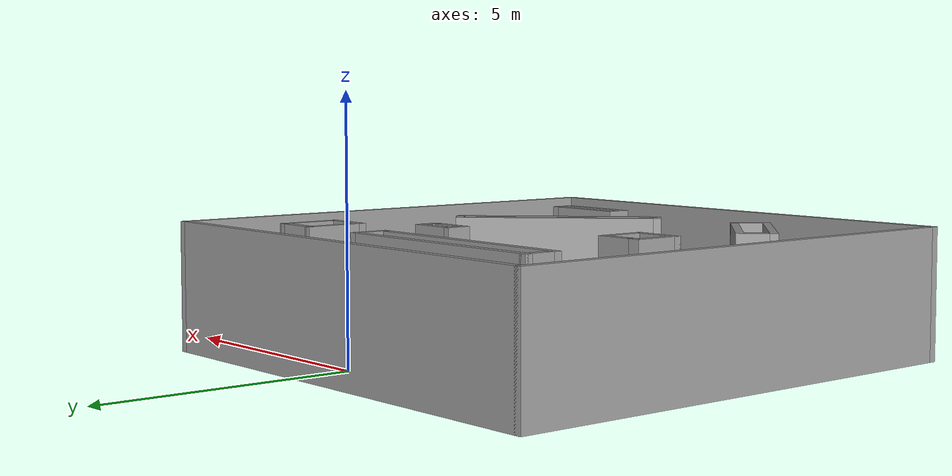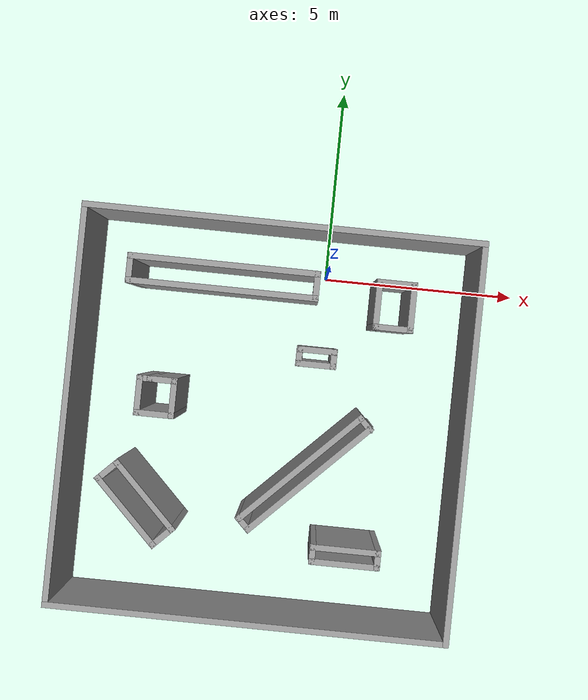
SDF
<?xml version='1.0'?>
<sdf version='1.7'>
  <model name='room'>
    <pose>-1.14868 -3.81575 0 0 -0 0</pose>
    <link name='Wall_0'>
      <collision name='Wall_0_Collision'>
        <geometry>
          <box>
            <size>10 0.15 2.5</size>
          </box>
        </geometry>
        <pose>0 0 1.25 0 -0 0</pose>
      </collision>
      <visual name='Wall_0_Visual'>
        <pose>0 0 1.25 0 -0 0</pose>
        <geometry>
          <box>
            <size>10 0.15 2.5</size>
          </box>
        </geometry>
        <material>
          <script>
            <uri>file://media/materials/scripts/gazebo.material</uri>
            <name>Gazebo/Grey</name>
          </script>
          <ambient>1 1 1 1</ambient>
        </material>
        <meta>
          <layer>0</layer>
        </meta>
      </visual>
      <pose>0 4.925 0 0 -0 0</pose>
    </link>
    <link name='Wall_1'>
      <collision name='Wall_1_Collision'>
        <geometry>
          <box>
            <size>10 0.15 2.5</size>
          </box>
        </geometry>
        <pose>0 0 1.25 0 -0 0</pose>
      </collision>
      <visual name='Wall_1_Visual'>
        <pose>0 0 1.25 0 -0 0</pose>
        <geometry>
          <box>
            <size>10 0.15 2.5</size>
          </box>
        </geometry>
        <material>
          <script>
            <uri>file://media/materials/scripts/gazebo.material</uri>
            <name>Gazebo/Grey</name>
          </script>
          <ambient>1 1 1 1</ambient>
        </material>
        <meta>
          <layer>0</layer>
        </meta>
      </visual>
      <pose>4.925 -0 0 0 -0 -1.5708</pose>
    </link>
    <link name='Wall_10'>
      <collision name='Wall_10_Collision'>
        <geometry>
          <box>
            <size>4 0.15 2.5</size>
          </box>
        </geometry>
        <pose>0 0 1.25 0 -0 0</pose>
      </collision>
      <visual name='Wall_10_Visual'>
        <pose>0 0 1.25 0 -0 0</pose>
        <geometry>
          <box>
            <size>4 0.15 2.5</size>
          </box>
        </geometry>
        <material>
          <script>
            <uri>file://media/materials/scripts/gazebo.material</uri>
            <name>Gazebo/Grey</name>
          </script>
          <ambient>1 1 1 1</ambient>
        </material>
        <meta>
          <layer>0</layer>
        </meta>
      </visual>
      <pose>0.947729 -0.990701 0 0 -0 -2.35619</pose>
    </link>
    <link name='Wall_11'>
      <collision name='Wall_11_Collision'>
        <geometry>
          <box>
            <size>0.5 0.15 2.5</size>
          </box>
        </geometry>
        <pose>0 0 1.25 0 -0 0</pose>
      </collision>
      <visual name='Wall_11_Visual'>
        <pose>0 0 1.25 0 -0 0</pose>
        <geometry>
          <box>
            <size>0.5 0.15 2.5</size>
          </box>
        </geometry>
        <material>
          <script>
            <uri>file://media/materials/scripts/gazebo.material</uri>
            <name>Gazebo/Grey</name>
          </script>
          <ambient>1 1 1 1</ambient>
        </material>
        <meta>
          <layer>0</layer>
        </meta>
      </visual>
      <pose>-0.289708 -2.47562 0 0 -0 -0.785398</pose>
    </link>
    <link name='Wall_12'>
      <collision name='Wall_12_Collision'>
        <geometry>
          <box>
            <size>4 0.15 2.5</size>
          </box>
        </geometry>
        <pose>0 0 1.25 0 -0 0</pose>
      </collision>
      <visual name='Wall_12_Visual'>
        <pose>0 0 1.25 0 -0 0</pose>
        <geometry>
          <box>
            <size>4 0.15 2.5</size>
          </box>
        </geometry>
        <material>
          <script>
            <uri>file://media/materials/scripts/gazebo.material</uri>
            <name>Gazebo/Grey</name>
          </script>
          <ambient>1 1 1 1</ambient>
        </material>
        <meta>
          <layer>0</layer>
        </meta>
      </visual>
      <pose>1.19522 -1.23819 0 0 -0 0.785398</pose>
    </link>
    <link name='Wall_13'>
      <collision name='Wall_13_Collision'>
        <geometry>
          <box>
            <size>0.15 0.15 2.5</size>
          </box>
        </geometry>
        <pose>0 0 1.25 0 -0 0</pose>
      </collision>
      <visual name='Wall_13_Visual'>
        <pose>0 0 1.25 0 -0 0</pose>
        <geometry>
          <box>
            <size>0.15 0.15 2.5</size>
          </box>
        </geometry>
        <material>
          <script>
            <uri>file://media/materials/scripts/gazebo.material</uri>
            <name>Gazebo/Grey</name>
          </script>
          <ambient>1 1 1 1</ambient>
        </material>
        <meta>
          <layer>0</layer>
        </meta>
      </visual>
      <pose>2.5564 0.122992 0 0 -0 0</pose>
    </link>
    <link name='Wall_14'>
      <collision name='Wall_14_Collision'>
        <geometry>
          <box>
            <size>0.5 0.15 2.5</size>
          </box>
        </geometry>
        <pose>0 0 1.25 0 -0 0</pose>
      </collision>
      <visual name='Wall_14_Visual'>
        <pose>0 0 1.25 0 -0 0</pose>
        <geometry>
          <box>
            <size>0.5 0.15 2.5</size>
          </box>
        </geometry>
        <material>
          <script>
            <uri>file://media/materials/scripts/gazebo.material</uri>
            <name>Gazebo/Grey</name>
          </script>
          <ambient>1 1 1 1</ambient>
        </material>
        <meta>
          <layer>0</layer>
        </meta>
      </visual>
      <pose>2.43265 0.246736 0 0 -0 2.35619</pose>
    </link>
    <link name='Wall_16'>
      <collision name='Wall_16_Collision'>
        <geometry>
          <box>
            <size>0.75 0.15 2.5</size>
          </box>
        </geometry>
        <pose>0 0 1.25 0 -0 0</pose>
      </collision>
      <visual name='Wall_16_Visual'>
        <pose>0 0 1.25 0 -0 0</pose>
        <geometry>
          <box>
            <size>0.75 0.15 2.5</size>
          </box>
        </geometry>
        <material>
          <script>
            <uri>file://media/materials/scripts/gazebo.material</uri>
            <name>Gazebo/Grey</name>
          </script>
          <ambient>1 1 1 1</ambient>
        </material>
        <meta>
          <layer>0</layer>
        </meta>
      </visual>
      <pose>-2.61514 0.827804 0 0 -0 0</pose>
    </link>
    <link name='Wall_17'>
      <collision name='Wall_17_Collision'>
        <geometry>
          <box>
            <size>1 0.15 2.5</size>
          </box>
        </geometry>
        <pose>0 0 1.25 0 -0 0</pose>
      </collision>
      <visual name='Wall_17_Visual'>
        <pose>0 0 1.25 0 -0 0</pose>
        <geometry>
          <box>
            <size>1 0.15 2.5</size>
          </box>
        </geometry>
        <material>
          <script>
            <uri>file://media/materials/scripts/gazebo.material</uri>
            <name>Gazebo/Grey</name>
          </script>
          <ambient>1 1 1 1</ambient>
        </material>
        <meta>
          <layer>0</layer>
        </meta>
      </visual>
      <pose>-2.31514 0.402803 0 0 -0 -1.5708</pose>
    </link>
    <link name='Wall_18'>
      <collision name='Wall_18_Collision'>
        <geometry>
          <box>
            <size>1 0.15 2.5</size>
          </box>
        </geometry>
        <pose>0 0 1.25 0 -0 0</pose>
      </collision>
      <visual name='Wall_18_Visual'>
        <pose>0 0 1.25 0 -0 0</pose>
        <geometry>
          <box>
            <size>1 0.15 2.5</size>
          </box>
        </geometry>
        <material>
          <script>
            <uri>file://media/materials/scripts/gazebo.material</uri>
            <name>Gazebo/Grey</name>
          </script>
          <ambient>1 1 1 1</ambient>
        </material>
        <meta>
          <layer>0</layer>
        </meta>
      </visual>
      <pose>-2.74014 -0.022197 0 0 -0 3.14159</pose>
    </link>
    <link name='Wall_19'>
      <collision name='Wall_19_Collision'>
        <geometry>
          <box>
            <size>1 0.15 2.5</size>
          </box>
        </geometry>
        <pose>0 0 1.25 0 -0 0</pose>
      </collision>
      <visual name='Wall_19_Visual'>
        <pose>0 0 1.25 0 -0 0</pose>
        <geometry>
          <box>
            <size>1 0.15 2.5</size>
          </box>
        </geometry>
        <material>
          <script>
            <uri>file://media/materials/scripts/gazebo.material</uri>
            <name>Gazebo/Grey</name>
          </script>
          <ambient>1 1 1 1</ambient>
        </material>
        <meta>
          <layer>0</layer>
        </meta>
      </visual>
      <pose>-3.16514 0.402803 0 0 -0 1.5708</pose>
    </link>
    <link name='Wall_2'>
      <collision name='Wall_2_Collision'>
        <geometry>
          <box>
            <size>10 0.15 2.5</size>
          </box>
        </geometry>
        <pose>0 0 1.25 0 -0 0</pose>
      </collision>
      <visual name='Wall_2_Visual'>
        <pose>0 0 1.25 0 -0 0</pose>
        <geometry>
          <box>
            <size>10 0.15 2.5</size>
          </box>
        </geometry>
        <material>
          <script>
            <uri>file://media/materials/scripts/gazebo.material</uri>
            <name>Gazebo/Grey</name>
          </script>
          <ambient>1 1 1 1</ambient>
        </material>
        <meta>
          <layer>0</layer>
        </meta>
      </visual>
      <pose>0 -4.925 0 0 -0 3.14159</pose>
    </link>
    <link name='Wall_20'>
      <collision name='Wall_20_Collision'>
        <geometry>
          <box>
            <size>0.4 0.15 2.5</size>
          </box>
        </geometry>
        <pose>0 0 1.25 0 -0 0</pose>
      </collision>
      <visual name='Wall_20_Visual'>
        <pose>0 0 1.25 0 -0 0</pose>
        <geometry>
          <box>
            <size>0.4 0.15 2.5</size>
          </box>
        </geometry>
        <material>
          <script>
            <uri>file://media/materials/scripts/gazebo.material</uri>
            <name>Gazebo/Grey</name>
          </script>
          <ambient>1 1 1 1</ambient>
        </material>
        <meta>
          <layer>0</layer>
        </meta>
      </visual>
      <pose>-3.04014 0.827804 0 0 -0 0</pose>
    </link>
    <link name='Wall_22'>
      <collision name='Wall_22_Collision'>
        <geometry>
          <box>
            <size>1 0.15 2.5</size>
          </box>
        </geometry>
        <pose>0 0 1.25 0 -0 0</pose>
      </collision>
      <visual name='Wall_22_Visual'>
        <pose>0 0 1.25 0 -0 0</pose>
        <geometry>
          <box>
            <size>1 0.15 2.5</size>
          </box>
        </geometry>
        <material>
          <script>
            <uri>file://media/materials/scripts/gazebo.material</uri>
            <name>Gazebo/Grey</name>
          </script>
          <ambient>1 1 1 1</ambient>
        </material>
        <meta>
          <layer>0</layer>
        </meta>
      </visual>
      <pose>1.08051 1.91834 0 0 -0 0</pose>
    </link>
    <link name='Wall_23'>
      <collision name='Wall_23_Collision'>
        <geometry>
          <box>
            <size>0.5 0.15 2.5</size>
          </box>
        </geometry>
        <pose>0 0 1.25 0 -0 0</pose>
      </collision>
      <visual name='Wall_23_Visual'>
        <pose>0 0 1.25 0 -0 0</pose>
        <geometry>
          <box>
            <size>0.5 0.15 2.5</size>
          </box>
        </geometry>
        <material>
          <script>
            <uri>file://media/materials/scripts/gazebo.material</uri>
            <name>Gazebo/Grey</name>
          </script>
          <ambient>1 1 1 1</ambient>
        </material>
        <meta>
          <layer>0</layer>
        </meta>
      </visual>
      <pose>1.50551 1.74334 0 0 -0 -1.5708</pose>
    </link>
    <link name='Wall_24'>
      <collision name='Wall_24_Collision'>
        <geometry>
          <box>
            <size>1 0.15 2.5</size>
          </box>
        </geometry>
        <pose>0 0 1.25 0 -0 0</pose>
      </collision>
      <visual name='Wall_24_Visual'>
        <pose>0 0 1.25 0 -0 0</pose>
        <geometry>
          <box>
            <size>1 0.15 2.5</size>
          </box>
        </geometry>
        <material>
          <script>
            <uri>file://media/materials/scripts/gazebo.material</uri>
            <name>Gazebo/Grey</name>
          </script>
          <ambient>1 1 1 1</ambient>
        </material>
        <meta>
          <layer>0</layer>
        </meta>
      </visual>
      <pose>1.08051 1.56835 0 0 -0 3.14159</pose>
    </link>
    <link name='Wall_25'>
      <collision name='Wall_25_Collision'>
        <geometry>
          <box>
            <size>0.5 0.15 2.5</size>
          </box>
        </geometry>
        <pose>0 0 1.25 0 -0 0</pose>
      </collision>
      <visual name='Wall_25_Visual'>
        <pose>0 0 1.25 0 -0 0</pose>
        <geometry>
          <box>
            <size>0.5 0.15 2.5</size>
          </box>
        </geometry>
        <material>
          <script>
            <uri>file://media/materials/scripts/gazebo.material</uri>
            <name>Gazebo/Grey</name>
          </script>
          <ambient>1 1 1 1</ambient>
        </material>
        <meta>
          <layer>0</layer>
        </meta>
      </visual>
      <pose>0.655507 1.74334 0 0 -0 1.5708</pose>
    </link>
    <link name='Wall_27'>
      <collision name='Wall_27_Collision'>
        <geometry>
          <box>
            <size>2.25 0.15 2.5</size>
          </box>
        </geometry>
        <pose>0 0 1.25 0 -0 0</pose>
      </collision>
      <visual name='Wall_27_Visual'>
        <pose>0 0 1.25 0 -0 0</pose>
        <geometry>
          <box>
            <size>2.25 0.15 2.5</size>
          </box>
        </geometry>
        <material>
          <script>
            <uri>file://media/materials/scripts/gazebo.material</uri>
            <name>Gazebo/Grey</name>
          </script>
          <ambient>1 1 1 1</ambient>
        </material>
        <meta>
          <layer>0</layer>
        </meta>
      </visual>
      <pose>-2.77071 -2.03956 0 0 -0 -0.785398</pose>
    </link>
    <link name='Wall_28'>
      <collision name='Wall_28_Collision'>
        <geometry>
          <box>
            <size>0.75 0.15 2.5</size>
          </box>
        </geometry>
        <pose>0 0 1.25 0 -0 0</pose>
      </collision>
      <visual name='Wall_28_Visual'>
        <pose>0 0 1.25 0 -0 0</pose>
        <geometry>
          <box>
            <size>0.75 0.15 2.5</size>
          </box>
        </geometry>
        <material>
          <script>
            <uri>file://media/materials/scripts/gazebo.material</uri>
            <name>Gazebo/Grey</name>
          </script>
          <ambient>1 1 1 1</ambient>
        </material>
        <meta>
          <layer>0</layer>
        </meta>
      </visual>
      <pose>-2.24038 -2.99415 0 0 -0 -2.35619</pose>
    </link>
    <link name='Wall_29'>
      <collision name='Wall_29_Collision'>
        <geometry>
          <box>
            <size>2.25 0.15 2.5</size>
          </box>
        </geometry>
        <pose>0 0 1.25 0 -0 0</pose>
      </collision>
      <visual name='Wall_29_Visual'>
        <pose>0 0 1.25 0 -0 0</pose>
        <geometry>
          <box>
            <size>2.25 0.15 2.5</size>
          </box>
        </geometry>
        <material>
          <script>
            <uri>file://media/materials/scripts/gazebo.material</uri>
            <name>Gazebo/Grey</name>
          </script>
          <ambient>1 1 1 1</ambient>
        </material>
        <meta>
          <layer>0</layer>
        </meta>
      </visual>
      <pose>-3.19498 -2.46382 0 0 -0 2.35619</pose>
    </link>
    <link name='Wall_3'>
      <collision name='Wall_3_Collision'>
        <geometry>
          <box>
            <size>10 0.15 2.5</size>
          </box>
        </geometry>
        <pose>0 0 1.25 0 -0 0</pose>
      </collision>
      <visual name='Wall_3_Visual'>
        <pose>0 0 1.25 0 -0 0</pose>
        <geometry>
          <box>
            <size>10 0.15 2.5</size>
          </box>
        </geometry>
        <material>
          <script>
            <uri>file://media/materials/scripts/gazebo.material</uri>
            <name>Gazebo/Grey</name>
          </script>
          <ambient>1 1 1 1</ambient>
        </material>
        <meta>
          <layer>0</layer>
        </meta>
      </visual>
      <pose>-4.925 -0 0 0 -0 1.5708</pose>
    </link>
    <link name='Wall_30'>
      <collision name='Wall_30_Collision'>
        <geometry>
          <box>
            <size>0.75 0.15 2.5</size>
          </box>
        </geometry>
        <pose>0 0 1.25 0 -0 0</pose>
      </collision>
      <visual name='Wall_30_Visual'>
        <pose>0 0 1.25 0 -0 0</pose>
        <geometry>
          <box>
            <size>0.75 0.15 2.5</size>
          </box>
        </geometry>
        <material>
          <script>
            <uri>file://media/materials/scripts/gazebo.material</uri>
            <name>Gazebo/Grey</name>
          </script>
          <ambient>1 1 1 1</ambient>
        </material>
        <meta>
          <layer>0</layer>
        </meta>
      </visual>
      <pose>-3.72531 -1.50923 0 0 -0 0.785398</pose>
    </link>
    <link name='Wall_32'>
      <collision name='Wall_32_Collision'>
        <geometry>
          <box>
            <size>1.75 0.15 2.5</size>
          </box>
        </geometry>
        <pose>0 0 1.25 0 -0 0</pose>
      </collision>
      <visual name='Wall_32_Visual'>
        <pose>0 0 1.25 0 -0 0</pose>
        <geometry>
          <box>
            <size>1.75 0.15 2.5</size>
          </box>
        </geometry>
        <material>
          <script>
            <uri>file://media/materials/scripts/gazebo.material</uri>
            <name>Gazebo/Grey</name>
          </script>
          <ambient>1 1 1 1</ambient>
        </material>
        <meta>
          <layer>0</layer>
        </meta>
      </visual>
      <pose>2.25785 -2.87279 0 0 -0 0</pose>
    </link>
    <link name='Wall_33'>
      <collision name='Wall_33_Collision'>
        <geometry>
          <box>
            <size>0.5 0.15 2.5</size>
          </box>
        </geometry>
        <pose>0 0 1.25 0 -0 0</pose>
      </collision>
      <visual name='Wall_33_Visual'>
        <pose>0 0 1.25 0 -0 0</pose>
        <geometry>
          <box>
            <size>0.5 0.15 2.5</size>
          </box>
        </geometry>
        <material>
          <script>
            <uri>file://media/materials/scripts/gazebo.material</uri>
            <name>Gazebo/Grey</name>
          </script>
          <ambient>1 1 1 1</ambient>
        </material>
        <meta>
          <layer>0</layer>
        </meta>
      </visual>
      <pose>3.05785 -3.04779 0 0 -0 -1.5708</pose>
    </link>
    <link name='Wall_34'>
      <collision name='Wall_34_Collision'>
        <geometry>
          <box>
            <size>1.75 0.15 2.5</size>
          </box>
        </geometry>
        <pose>0 0 1.25 0 -0 0</pose>
      </collision>
      <visual name='Wall_34_Visual'>
        <pose>0 0 1.25 0 -0 0</pose>
        <geometry>
          <box>
            <size>1.75 0.15 2.5</size>
          </box>
        </geometry>
        <material>
          <script>
            <uri>file://media/materials/scripts/gazebo.material</uri>
            <name>Gazebo/Grey</name>
          </script>
          <ambient>1 1 1 1</ambient>
        </material>
        <meta>
          <layer>0</layer>
        </meta>
      </visual>
      <pose>2.25785 -3.22279 0 0 -0 3.14159</pose>
    </link>
    <link name='Wall_35'>
      <collision name='Wall_35_Collision'>
        <geometry>
          <box>
            <size>0.5 0.15 2.5</size>
          </box>
        </geometry>
        <pose>0 0 1.25 0 -0 0</pose>
      </collision>
      <visual name='Wall_35_Visual'>
        <pose>0 0 1.25 0 -0 0</pose>
        <geometry>
          <box>
            <size>0.5 0.15 2.5</size>
          </box>
        </geometry>
        <material>
          <script>
            <uri>file://media/materials/scripts/gazebo.material</uri>
            <name>Gazebo/Grey</name>
          </script>
          <ambient>1 1 1 1</ambient>
        </material>
        <meta>
          <layer>0</layer>
        </meta>
      </visual>
      <pose>1.45785 -3.04779 0 0 -0 1.5708</pose>
    </link>
    <link name='Wall_37'>
      <collision name='Wall_37_Collision'>
        <geometry>
          <box>
            <size>1 0.15 2.5</size>
          </box>
        </geometry>
        <pose>0 0 1.25 0 -0 0</pose>
      </collision>
      <visual name='Wall_37_Visual'>
        <pose>0 0 1.25 0 -0 0</pose>
        <geometry>
          <box>
            <size>1 0.15 2.5</size>
          </box>
        </geometry>
        <material>
          <script>
            <uri>file://media/materials/scripts/gazebo.material</uri>
            <name>Gazebo/Grey</name>
          </script>
          <ambient>1 1 1 1</ambient>
        </material>
        <meta>
          <layer>0</layer>
        </meta>
      </visual>
      <pose>2.86786 3.74082 0 0 -0 0</pose>
    </link>
    <link name='Wall_38'>
      <collision name='Wall_38_Collision'>
        <geometry>
          <box>
            <size>1.25 0.15 2.5</size>
          </box>
        </geometry>
        <pose>0 0 1.25 0 -0 0</pose>
      </collision>
      <visual name='Wall_38_Visual'>
        <pose>0 0 1.25 0 -0 0</pose>
        <geometry>
          <box>
            <size>1.25 0.15 2.5</size>
          </box>
        </geometry>
        <material>
          <script>
            <uri>file://media/materials/scripts/gazebo.material</uri>
            <name>Gazebo/Grey</name>
          </script>
          <ambient>1 1 1 1</ambient>
        </material>
        <meta>
          <layer>0</layer>
        </meta>
      </visual>
      <pose>3.29286 3.19082 0 0 -0 -1.5708</pose>
    </link>
    <link name='Wall_39'>
      <collision name='Wall_39_Collision'>
        <geometry>
          <box>
            <size>1 0.15 2.5</size>
          </box>
        </geometry>
        <pose>0 0 1.25 0 -0 0</pose>
      </collision>
      <visual name='Wall_39_Visual'>
        <pose>0 0 1.25 0 -0 0</pose>
        <geometry>
          <box>
            <size>1 0.15 2.5</size>
          </box>
        </geometry>
        <material>
          <script>
            <uri>file://media/materials/scripts/gazebo.material</uri>
            <name>Gazebo/Grey</name>
          </script>
          <ambient>1 1 1 1</ambient>
        </material>
        <meta>
          <layer>0</layer>
        </meta>
      </visual>
      <pose>2.86786 2.64082 0 0 -0 3.14159</pose>
    </link>
    <link name='Wall_40'>
      <collision name='Wall_40_Collision'>
        <geometry>
          <box>
            <size>1.25 0.15 2.5</size>
          </box>
        </geometry>
        <pose>0 0 1.25 0 -0 0</pose>
      </collision>
      <visual name='Wall_40_Visual'>
        <pose>0 0 1.25 0 -0 0</pose>
        <geometry>
          <box>
            <size>1.25 0.15 2.5</size>
          </box>
        </geometry>
        <material>
          <script>
            <uri>file://media/materials/scripts/gazebo.material</uri>
            <name>Gazebo/Grey</name>
          </script>
          <ambient>1 1 1 1</ambient>
        </material>
        <meta>
          <layer>0</layer>
        </meta>
      </visual>
      <pose>2.44286 3.19082 0 0 -0 1.5708</pose>
    </link>
    <link name='Wall_5'>
      <collision name='Wall_5_Collision'>
        <geometry>
          <box>
            <size>4.75 0.15 2.5</size>
          </box>
        </geometry>
        <pose>0 0 1.25 0 -0 0</pose>
      </collision>
      <visual name='Wall_5_Visual'>
        <pose>0 0 1.25 0 -0 0</pose>
        <geometry>
          <box>
            <size>4.75 0.15 2.5</size>
          </box>
        </geometry>
        <material>
          <script>
            <uri>file://media/materials/scripts/gazebo.material</uri>
            <name>Gazebo/Grey</name>
          </script>
          <ambient>1 1 1 1</ambient>
        </material>
        <meta>
          <layer>0</layer>
        </meta>
      </visual>
      <pose>-1.38907 3.78282 0 0 -0 0</pose>
    </link>
    <link name='Wall_6'>
      <collision name='Wall_6_Collision'>
        <geometry>
          <box>
            <size>0.75 0.15 2.5</size>
          </box>
        </geometry>
        <pose>0 0 1.25 0 -0 0</pose>
      </collision>
      <visual name='Wall_6_Visual'>
        <pose>0 0 1.25 0 -0 0</pose>
        <geometry>
          <box>
            <size>0.75 0.15 2.5</size>
          </box>
        </geometry>
        <material>
          <script>
            <uri>file://media/materials/scripts/gazebo.material</uri>
            <name>Gazebo/Grey</name>
          </script>
          <ambient>1 1 1 1</ambient>
        </material>
        <meta>
          <layer>0</layer>
        </meta>
      </visual>
      <pose>0.91093 3.48282 0 0 -0 -1.5708</pose>
    </link>
    <link name='Wall_7'>
      <collision name='Wall_7_Collision'>
        <geometry>
          <box>
            <size>4.75 0.15 2.5</size>
          </box>
        </geometry>
        <pose>0 0 1.25 0 -0 0</pose>
      </collision>
      <visual name='Wall_7_Visual'>
        <pose>0 0 1.25 0 -0 0</pose>
        <geometry>
          <box>
            <size>4.75 0.15 2.5</size>
          </box>
        </geometry>
        <material>
          <script>
            <uri>file://media/materials/scripts/gazebo.material</uri>
            <name>Gazebo/Grey</name>
          </script>
          <ambient>1 1 1 1</ambient>
        </material>
        <meta>
          <layer>0</layer>
        </meta>
      </visual>
      <pose>-1.38907 3.18282 0 0 -0 3.14159</pose>
    </link>
    <link name='Wall_8'>
      <collision name='Wall_8_Collision'>
        <geometry>
          <box>
            <size>0.75 0.15 2.5</size>
          </box>
        </geometry>
        <pose>0 0 1.25 0 -0 0</pose>
      </collision>
      <visual name='Wall_8_Visual'>
        <pose>0 0 1.25 0 -0 0</pose>
        <geometry>
          <box>
            <size>0.75 0.15 2.5</size>
          </box>
        </geometry>
        <material>
          <script>
            <uri>file://media/materials/scripts/gazebo.material</uri>
            <name>Gazebo/Grey</name>
          </script>
          <ambient>1 1 1 1</ambient>
        </material>
        <meta>
          <layer>0</layer>
        </meta>
      </visual>
      <pose>-3.68907 3.48282 0 0 -0 1.5708</pose>
    </link>
    <static>1</static>
  </model>
</sdf>
